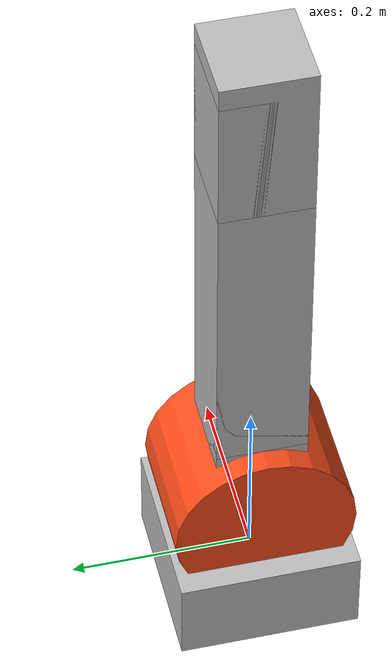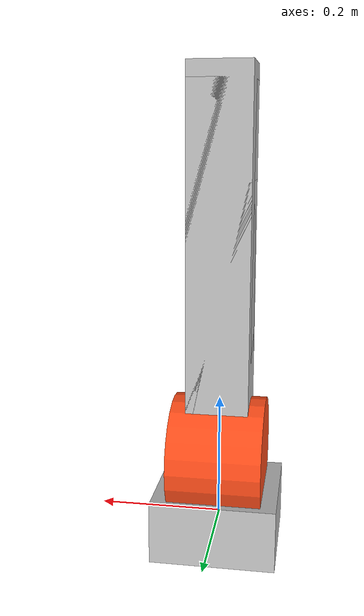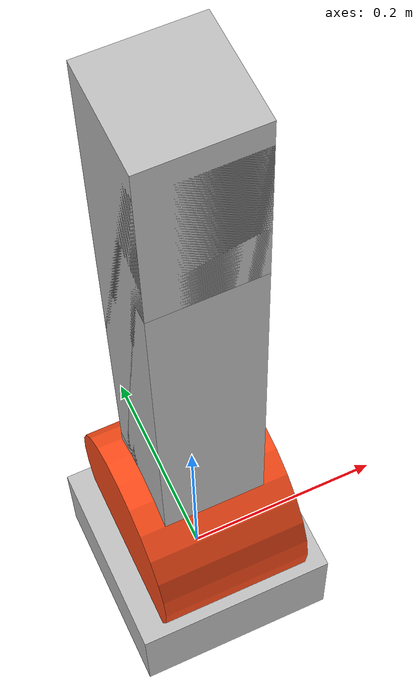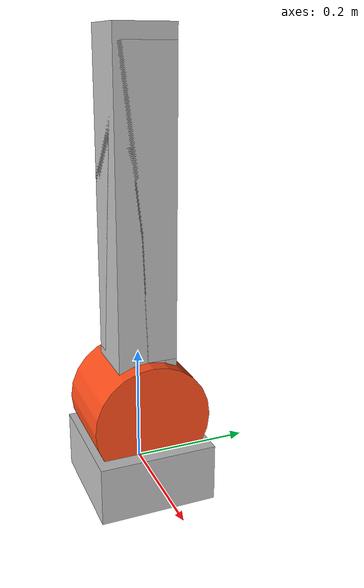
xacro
<?xml version="1.0"?>
<robot xmlns:xacro="http://ros.org/wiki/xacro" name="my_robot_arm">

  <material name="silver">
    <color rgba="0.75 0.75 0.75 1"/>
  </material>

  <material name="orange">
        <color rgba="1 0.3 0.1 1" />
  </material>

  <link name="world">

  </link>

  <link name="base_link">
    <visual>
      <origin rpy="0 0 0" xyz="0 0 0"/>
      <geometry>
        <box size="0.2 0.2 0.1"/>
      </geometry>
      <material name="silver"/>
    </visual>
  </link>

  <link name="link1">
    <visual>
      <origin rpy="0 0 0" xyz="0 0 0.25"/>
      <geometry>
        <box size="0.1 0.1 0.75"/>
      </geometry>
      <material name="silver"/>
    </visual>
  </link>

   <link name="cylinder1_to_2">
    <visual>
      <origin rpy="0 1.57 0" xyz="0 0 0"/>
      <geometry>
        <cylinder radius="0.1" length="0.15"/>
      </geometry>
      <material name="orange"/>
    </visual>
  </link>

  <link name="link2">
    <visual>
      <origin rpy="0 0 0" xyz="0 0 0.35"/>
      <geometry>
        <box size="0.1 0.1 0.5"/>
      </geometry>
      <material name="silver"/>
    </visual>
  </link>

  <link name="cylinder2_to_3">
    <visual>
      <origin rpy="0 1.57 0" xyz="0 0 0"/>
      <geometry>
        <cylinder radius="0.1" length="0.15"/>
      </geometry>
      <material name="orange"/>
    </visual>
  </link>

  <link name="link3">
    <visual>
      <origin rpy="0 0 0" xyz="0 0 0.25"/>
      <geometry>
        <box size="0.1 0.1 0.4"/>
      </geometry>
      <material name="silver"/>
    </visual>
  </link>

  <joint name="joint1" type="fixed">
    <parent link="world"/>
    <child link="base_link"/>
    <origin rpy="0 0 0" xyz="0 0 0"/>
  </joint>

  <joint name="joint2" type="revolute">
    <parent link="base_link"/>
    <child link="link1"/>
    <origin rpy="0 0 0" xyz="0 0 0.1"/>
    <axis xyz="0 0 1"/>
    <limit effort="100.0" velocity="1.0"/>
  </joint>

  <joint name="joint3" type="revolute">
    <parent link="link1"/>
    <child link="cylinder1_to_2"/>
    <origin rpy="0 0 0" xyz="0 0 0.0"/>
    <axis xyz="1 0 0"/>
    <limit effort="100.0" lower="-0.1" upper="0.1" velocity="1.0"/>
  </joint>

  <joint name="joint4" type="continuous">
    <parent link="cylinder1_to_2"/>
    <child link="link2"/>
    <origin rpy="0 0 0" xyz="0 0 0"/>
  </joint>

  <joint name="joint5" type="revolute">
    <parent link="link2"/>
    <child link="cylinder2_to_3"/>
    <origin rpy="0 0 0" xyz="0 0 0.0"/>
    <axis xyz="1 0 0"/>
    <limit effort="100.0" velocity="1.0"/>
  </joint>

  <joint name="joint6" type="continuous">
    <parent link="cylinder2_to_3"/>
    <child link="link3"/>
    <origin rpy="0 0 0" xyz="0 0 0"/>
  </joint>

</robot>
